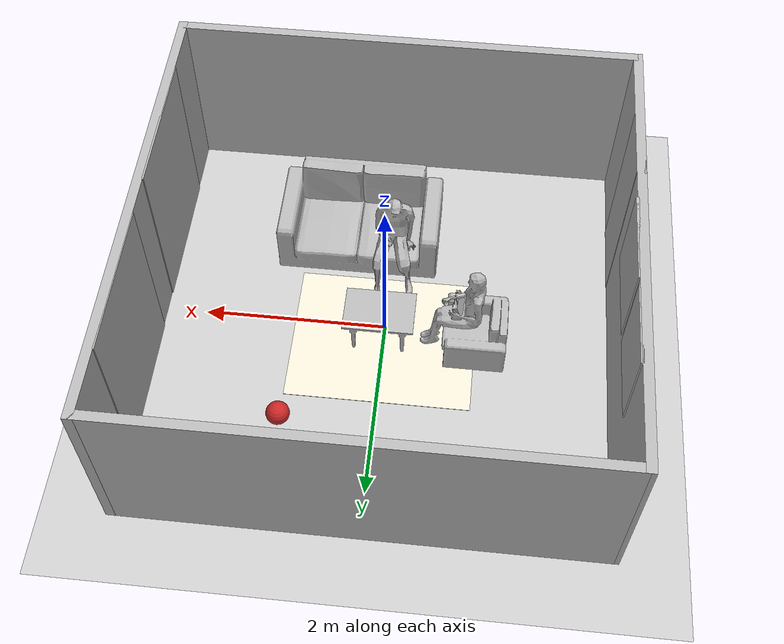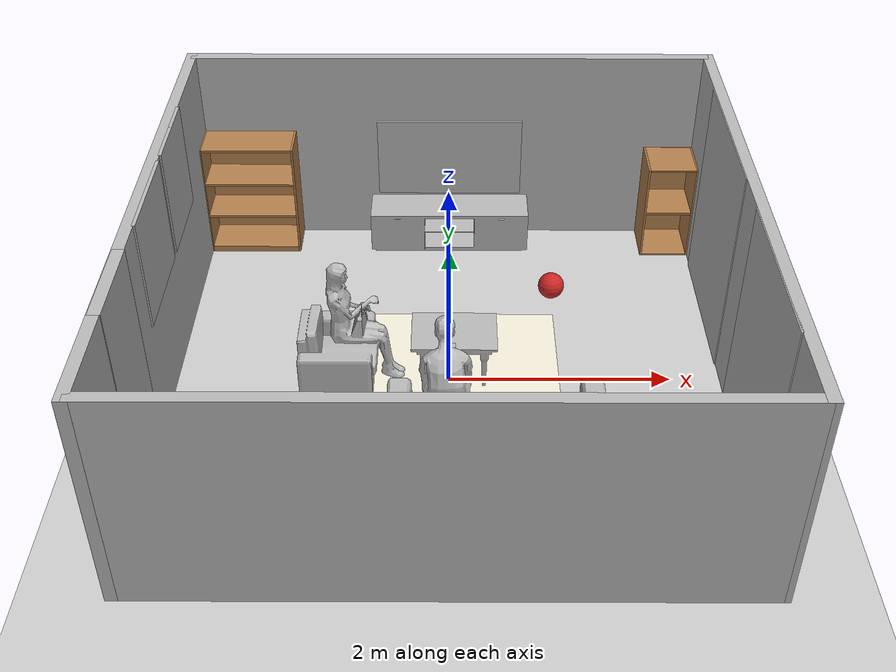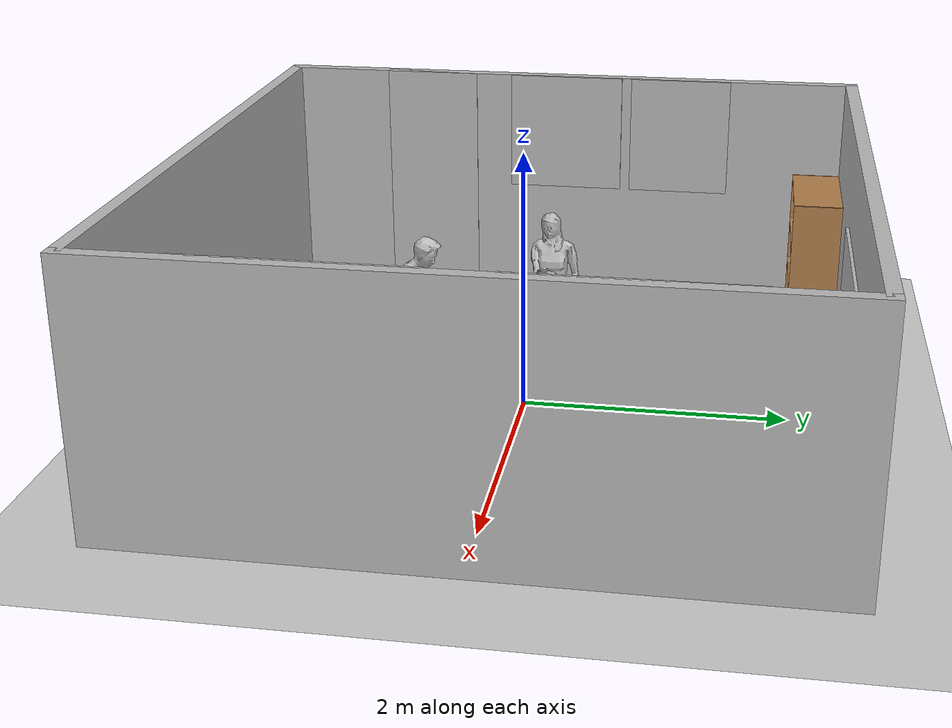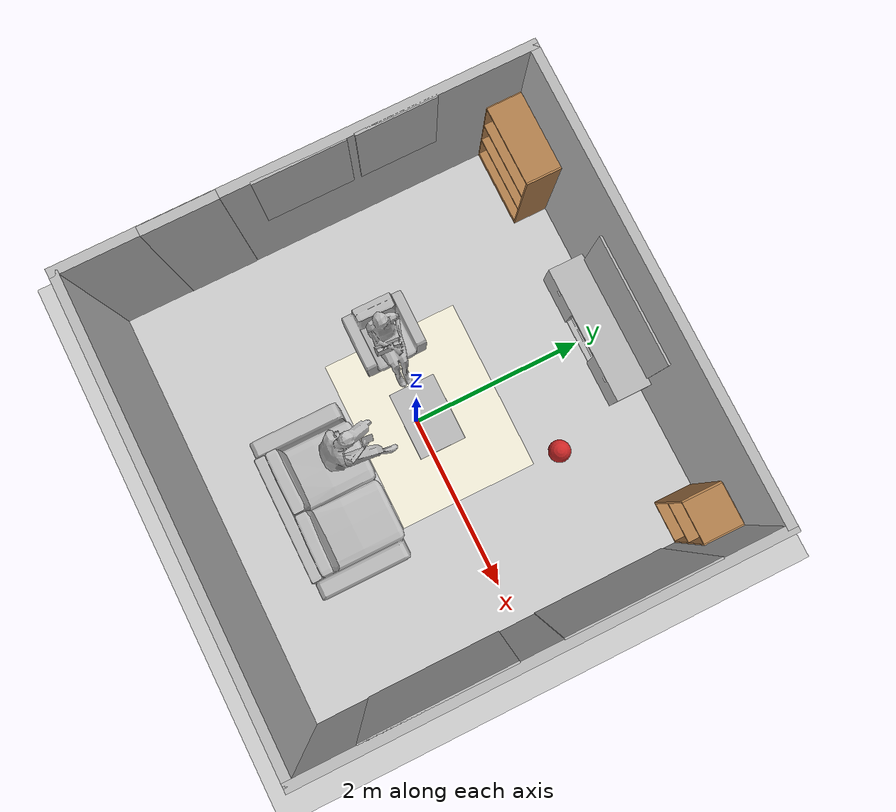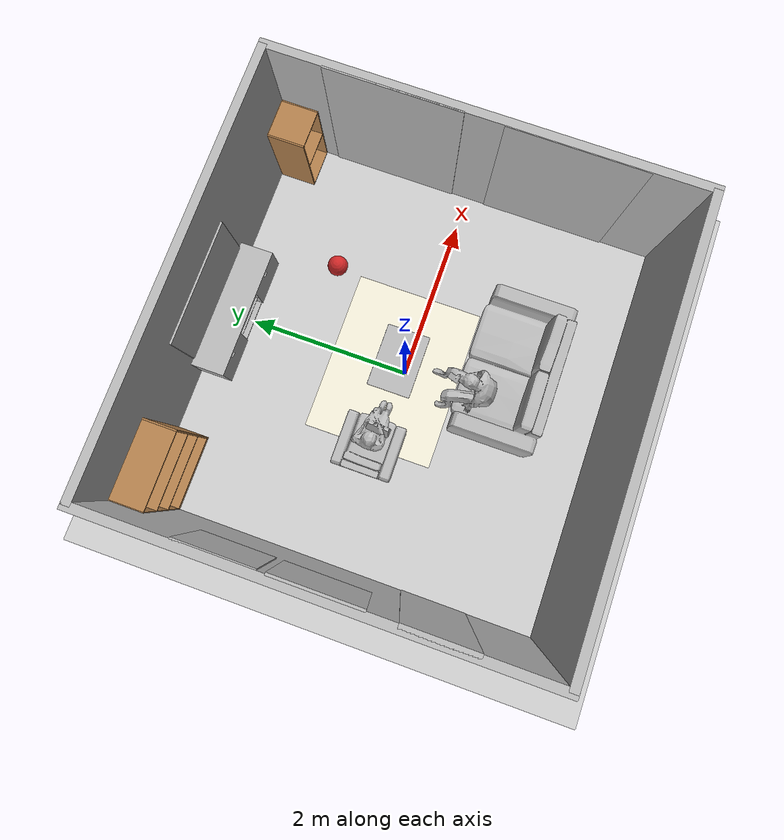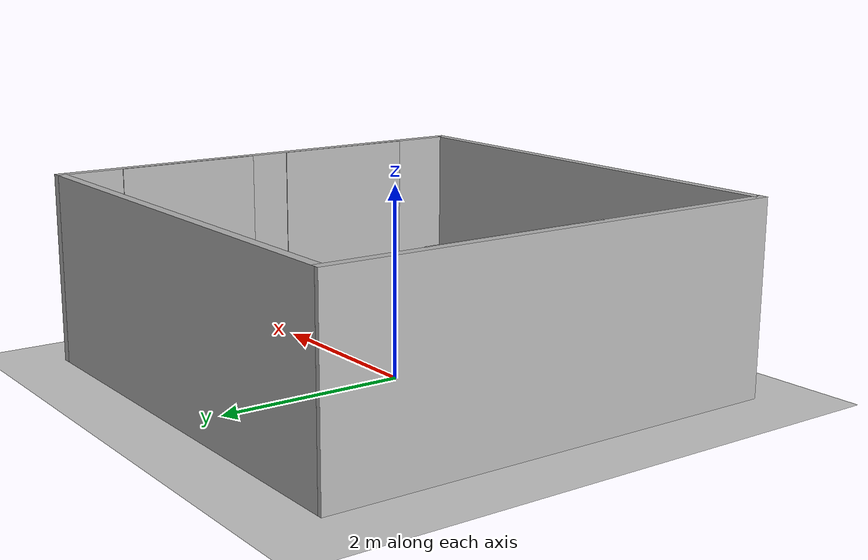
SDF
<sdf version="1.7">
 <world name="default">
  <light name="sun" type="directional">
   <cast_shadows>false</cast_shadows>
   <pose>0 0 10 0 -0 0</pose>
   <diffuse>0.8 0.8 0.8 1</diffuse>
   <specular>0.2 0.2 0.2 1</specular>
   <attenuation>
    <range>1000</range>
    <constant>0.9</constant>
    <linear>0.01</linear>
    <quadratic>0.001</quadratic>
   </attenuation>
   <direction>-0.5 0.1 -0.9</direction>
   <spot><inner_angle>0</inner_angle><outer_angle>0</outer_angle><falloff>0</falloff></spot>
  </light>
  <model name="ground_plane">
   <static>1</static>
   <link name="link">
    <collision name="collision">
     <geometry><plane><normal>0 0 1</normal><size>100 100</size></plane></geometry>
     <surface>
      <contact><collide_bitmask>65535</collide_bitmask></contact>
      <friction><ode><mu>100</mu><mu2>50</mu2></ode></friction>
     </surface>
    </collision>
    <visual name="visual">
     <cast_shadows>0</cast_shadows>
     <geometry><plane><normal>0 0 1</normal><size>1 1</size></plane></geometry>
     <material>
      <script><uri>file://media/materials/scripts/gazebo.material</uri><name>Gazebo/Grey</name></script>
     </material>
    </visual>
   </link>
  </model>
  <gravity>0 0 -9.8</gravity>
  <magnetic_field>6e-06 2.3e-05 -4.2e-05</magnetic_field>
  <atmosphere type="adiabatic"/>
  <physics type="ode">
   <max_step_size>0.001</max_step_size>
   <real_time_factor>1</real_time_factor>
   <real_time_update_rate>1000</real_time_update_rate>
  </physics>
  <scene><ambient>0.4 0.4 0.4 1</ambient><background>0.7 0.7 0.7 1</background><shadows>1</shadows></scene>
  <audio><device>default</device></audio>
  <spherical_coordinates>
   <surface_model>EARTH_WGS84</surface_model>
   <latitude_deg>0</latitude_deg>
   <longitude_deg>0</longitude_deg>
   <elevation>0</elevation>
   <heading_deg>0</heading_deg>
  </spherical_coordinates>
  <model name="FemaleVisitorSit">
   <static>1</static>
   <link name="body">
    <visual name="visual">
     <geometry><mesh><uri>model://FemaleVisitorSit/meshes/FemaleVisitorSit.obj</uri></mesh></geometry>
    </visual>
    <collision name="collision">
     <geometry><mesh><uri>model://FemaleVisitorSit/meshes/FemaleVisitorSit_Col.obj</uri></mesh></geometry>
    </collision>
   </link>
   <pose>-0.91 0.09 0 0 -0 1.5707</pose>
  </model>
  <model name="MaleVisitorSit">
   <static>1</static>
   <link name="body">
    <visual name="visual">
     <geometry><mesh><uri>model://MaleVisitorSit/meshes/MaleVisitorSit.obj</uri></mesh></geometry>
    </visual>
    <collision name="collision">
     <geometry><mesh><uri>model://MaleVisitorSit/meshes/MaleVisitorSit_Col.obj</uri></mesh></geometry>
    </collision>
   </link>
   <pose>0 -0.91 0 0 -0 3.1415</pose>
  </model>
  <model name="tv_65in_emissive">
   <link name="link">
    <visual name="visual">
     <geometry><box><size>0.05 1.45 0.83</size></box></geometry>
     <material>
      <script>
       <uri>model://tv_65in_emissive/material/script</uri>
       <uri>model://tv_65in_emissive/material/textures</uri>
       <name>Custom/tv_emissive</name>
      </script>
     </material>
    </visual>
   </link>
   <static>1</static>
   <pose>0 2.4 0.9 0 -0 1.5707</pose>
  </model>
  <model name="TVStand">
   <static>1</static>
   <link name="body">
    <visual name="visual"><geometry><mesh><uri>model://TVStand/meshes/TVStand.obj</uri></mesh></geometry></visual>
    <collision name="collision">
     <geometry><mesh><uri>model://TVStand/meshes/TVStand_Col.obj</uri></mesh></geometry>
    </collision>
   </link>
   <pose>0 2.2 0 0 -0 0</pose>
  </model>
  <model name="Bookshelf">
   <static>1</static>
   <link name="link">
    <inertial><mass>1</mass></inertial>
    <collision name="back">
     <pose>0 0.005 0.6 0 -0 0</pose>
     <geometry><box><size>0.9 0.01 1.2</size></box></geometry>
    </collision>
    <visual name="visual1">
     <pose>0 0.005 0.6 0 -0 0</pose>
     <geometry><box><size>0.9 0.01 1.2</size></box></geometry>
     <material>
      <diffuse>1 1 1 1</diffuse>
      <script><uri>file://media/materials/scripts/gazebo.material</uri><name>Gazebo/Wood</name></script>
      <pbr><metal><albedo_map>model://Bookshelf/bookshelf_diffuse.jpg</albedo_map></metal></pbr>
     </material>
    </visual>
    <collision name="left_side">
     <pose>0.45 -0.195 0.6 0 -0 0</pose>
     <geometry><box><size>0.02 0.4 1.2</size></box></geometry>
    </collision>
    <visual name="visual2">
     <pose>0.45 -0.195 0.6 0 -0 0</pose>
     <geometry><box><size>0.02 0.4 1.2</size></box></geometry>
     <material>
      <diffuse>1 1 1 1</diffuse>
      <script><uri>file://media/materials/scripts/gazebo.material</uri><name>Gazebo/Wood</name></script>
      <pbr><metal><albedo_map>model://Bookshelf/bookshelf_diffuse.jpg</albedo_map></metal></pbr>
     </material>
    </visual>
    <collision name="right_side">
     <pose>-0.45 -0.195 0.6 0 -0 0</pose>
     <geometry><box><size>0.02 0.4 1.2</size></box></geometry>
    </collision>
    <visual name="visual3">
     <pose>-0.45 -0.195 0.6 0 -0 0</pose>
     <geometry><box><size>0.02 0.4 1.2</size></box></geometry>
     <material>
      <diffuse>1 1 1 1</diffuse>
      <script><uri>file://media/materials/scripts/gazebo.material</uri><name>Gazebo/Wood</name></script>
      <pbr><metal><albedo_map>model://Bookshelf/bookshelf_diffuse.jpg</albedo_map></metal></pbr>
     </material>
    </visual>
    <collision name="bottom">
     <pose>0 -0.195 0.03 0 -0 0</pose>
     <geometry><box><size>0.88 0.4 0.06</size></box></geometry>
    </collision>
    <visual name="visual4">
     <pose>0 -0.195 0.03 0 -0 0</pose>
     <geometry><box><size>0.88 0.4 0.06</size></box></geometry>
     <material>
      <diffuse>1 1 1 1</diffuse>
      <script><uri>file://media/materials/scripts/gazebo.material</uri><name>Gazebo/Wood</name></script>
      <pbr><metal><albedo_map>model://Bookshelf/bookshelf_diffuse.jpg</albedo_map></metal></pbr>
     </material>
    </visual>
    <collision name="top">
     <pose>0 -0.195 1.19 0 -0 0</pose>
     <geometry><box><size>0.88 0.4 0.02</size></box></geometry>
    </collision>
    <visual name="visual5">
     <pose>0 -0.195 1.19 0 -0 0</pose>
     <geometry><box><size>0.88 0.4 0.02</size></box></geometry>
     <material>
      <diffuse>1 1 1 1</diffuse>
      <script><uri>file://media/materials/scripts/gazebo.material</uri><name>Gazebo/Wood</name></script>
      <pbr><metal><albedo_map>model://Bookshelf/bookshelf_diffuse.jpg</albedo_map></metal></pbr>
     </material>
    </visual>
    <collision name="low_shelf">
     <pose>0 -0.195 0.43 0 -0 0</pose>
     <geometry><box><size>0.88 0.4 0.02</size></box></geometry>
    </collision>
    <visual name="visual6">
     <pose>0 -0.195 0.43 0 -0 0</pose>
     <geometry><box><size>0.88 0.4 0.02</size></box></geometry>
     <material>
      <diffuse>1 1 1 1</diffuse>
      <script><uri>file://media/materials/scripts/gazebo.material</uri><name>Gazebo/Wood</name></script>
      <pbr><metal><albedo_map>model://Bookshelf/bookshelf_diffuse.jpg</albedo_map></metal></pbr>
     </material>
    </visual>
    <collision name="high_shelf">
     <pose>0 -0.195 0.8 0 -0 0</pose>
     <geometry><box><size>0.88 0.4 0.02</size></box></geometry>
    </collision>
    <visual name="visual7">
     <pose>0 -0.195 0.8 0 -0 0</pose>
     <geometry><box><size>0.88 0.4 0.02</size></box></geometry>
     <material>
      <diffuse>1 1 1 1</diffuse>
      <script><uri>file://media/materials/scripts/gazebo.material</uri><name>Gazebo/Wood</name></script>
      <pbr><metal><albedo_map>model://Bookshelf/bookshelf_diffuse.jpg</albedo_map></metal></pbr>
     </material>
    </visual>
   </link>
   <pose>-2 2.4 0 0 -0 0</pose>
  </model>
  <model name="cabinet">
   <static>1</static>
   <link name="cabinet_bottom_plate">
    <inertial>
     <pose>0 0 -1 0 -0 0</pose>
     <inertia><ixx>2.05</ixx><ixy>0</ixy><ixz>0</ixz><iyy>2.05</iyy><iyz>0</iyz><izz>2.05</izz></inertia>
     <mass>25</mass>
    </inertial>
    <collision name="cabinet_bottom_plate_geom">
     <pose>0 0 0.01 0 -0 0</pose>
     <geometry><box><size>0.45 0.45 0.02</size></box></geometry>
    </collision>
    <visual name="cabinet_bottom_plate_geom_visual">
     <pose>0 0 0.01 0 -0 0</pose>
     <geometry><box><size>0.45 0.45 0.02</size></box></geometry>
     <material>
      <script><uri>file://media/materials/scripts/gazebo.material</uri><name>Gazebo/Wood</name></script>
     </material>
    </visual>
    <collision name="cabinet_bottom_plate_geom_cabinet_back_plate">
     <pose>0.235 0 0.51 0 -0 0</pose>
     <geometry><box><size>0.02 0.45 1.02</size></box></geometry>
    </collision>
    <visual name="cabinet_bottom_plate_geom_cabinet_back_plate_visual">
     <pose>0.235 0 0.51 0 -0 0</pose>
     <geometry><box><size>0.02 0.45 1.02</size></box></geometry>
     <material>
      <script><uri>file://media/materials/scripts/gazebo.material</uri><name>Gazebo/Wood</name></script>
     </material>
    </visual>
    <collision name="cabinet_bottom_plate_geom_cabinet_left_plate">
     <pose>0 0.235 0.51 0 -0 0</pose>
     <geometry><box><size>0.45 0.02 1.02</size></box></geometry>
    </collision>
    <visual name="cabinet_bottom_plate_geom_cabinet_left_plate_visual">
     <pose>0 0.235 0.51 0 -0 0</pose>
     <geometry><box><size>0.45 0.02 1.02</size></box></geometry>
     <material>
      <script><uri>file://media/materials/scripts/gazebo.material</uri><name>Gazebo/Wood</name></script>
     </material>
    </visual>
    <collision name="cabinet_bottom_plate_geom_cabinet_middle_plate">
     <pose>0 0 0.51 0 -0 0</pose>
     <geometry><box><size>0.45 0.45 0.02</size></box></geometry>
    </collision>
    <visual name="cabinet_bottom_plate_geom_cabinet_middle_plate_visual">
     <pose>0 0 0.51 0 -0 0</pose>
     <geometry><box><size>0.45 0.45 0.02</size></box></geometry>
     <material>
      <script><uri>file://media/materials/scripts/gazebo.material</uri><name>Gazebo/Wood</name></script>
     </material>
    </visual>
    <collision name="cabinet_bottom_plate_geom_cabinet_right_plate">
     <pose>0 -0.235 0.51 0 -0 0</pose>
     <geometry><box><size>0.45 0.02 1.02</size></box></geometry>
    </collision>
    <visual name="cabinet_bottom_plate_geom_cabinet_right_plate_visual">
     <pose>0 -0.235 0.51 0 -0 0</pose>
     <geometry><box><size>0.45 0.02 1.02</size></box></geometry>
     <material>
      <script><uri>file://media/materials/scripts/gazebo.material</uri><name>Gazebo/Wood</name></script>
     </material>
    </visual>
    <collision name="cabinet_bottom_plate_geom_cabinet_top_plate">
     <pose>0 0 1.01 0 -0 0</pose>
     <geometry><box><size>0.45 0.45 0.02</size></box></geometry>
    </collision>
    <visual name="cabinet_bottom_plate_geom_cabinet_top_plate_visual">
     <pose>0 0 1.01 0 -0 0</pose>
     <geometry><box><size>0.45 0.45 0.02</size></box></geometry>
     <material>
      <script><uri>file://media/materials/scripts/gazebo.material</uri><name>Gazebo/Wood</name></script>
     </material>
    </visual>
   </link>
   <pose>2.21 2.17 0 0 -0 1.5707</pose>
  </model>
  <model name="MiniSofa">
   <link name="body">
    <pose>0 0 0 0 0 -1.5708</pose>
    <visual name="visual">
     <geometry><mesh><uri>model://MiniSofa/meshes/minisofa.obj</uri><scale>1 1 1</scale></mesh></geometry>
    </visual>
    <collision name="collision">
     <geometry><mesh><uri>model://MiniSofa/meshes/minisofa.obj</uri><scale>1 1 1</scale></mesh></geometry>
    </collision>
   </link>
   <static>1</static>
   <pose>-1 0.1 0 0 -0 3.1415</pose>
  </model>
  <model name="Sofa">
   <link name="link">
    <pose>0 0 0 0 -0 1.5708</pose>
    <visual name="visual"><geometry><mesh><uri>model://Sofa/meshes/Sofa.obj</uri></mesh></geometry></visual>
    <collision name="collision">
     <geometry><mesh><uri>model://Sofa/meshes/Sofa.obj</uri></mesh></geometry>
    </collision>
   </link>
   <static>1</static>
   <pose>0.394 -1.2 0 0 -0 1.5707</pose>
  </model>
  <model name="door_08x2m">
   <link name="link">
    <visual name="visual">
     <geometry><box><size>0.1 0.8 2</size></box></geometry>
     <material>
      <script>
       <uri>model://door_08x2m/material/script</uri>
       <uri>model://door_08x2m/material/textures</uri>
       <name>Custom/door_08x2m</name>
      </script>
     </material>
    </visual>
   </link>
   <static>1</static>
   <pose>-2.495 -1.2 1 0 -0 0</pose>
  </model>
  <model name="rug_ivory_2m">
   <link name="link">
    <visual name="visual">
     <geometry><box><size>1.6 2 0.005</size></box></geometry>
     <material>
      <script>
       <uri>model://rug_ivory_2m/material/script</uri>
       <uri>model://rug_ivory_2m/material/textures</uri>
       <name>Custom/rug_ivory_2m</name>
      </script>
     </material>
    </visual>
   </link>
   <static>1</static>
   <pose>0 0.15 0 0 -0 1.5707</pose>
  </model>
  <model name="kaiaai_poster">
   <link name="link">
    <visual name="visual">
     <geometry><box><size>0.03 0.9782 1</size></box></geometry>
     <material>
      <script>
       <uri>model://kaiaai_poster/material/script</uri>
       <uri>model://kaiaai_poster/material/textures</uri>
       <name>Custom/kaiaai</name>
      </script>
     </material>
    </visual>
   </link>
   <static>1</static>
   <pose>-2.45 0 1.5 0 -0 0</pose>
  </model>
  <model name="makerspet_poster">
   <link name="link">
    <visual name="visual">
     <geometry><box><size>0.03 0.85714 1</size></box></geometry>
     <material>
      <script>
       <uri>model://makerspet_poster/material/script</uri>
       <uri>model://makerspet_poster/material/textures</uri>
       <name>Custom/makerspet</name>
      </script>
     </material>
    </visual>
   </link>
   <static>1</static>
   <pose>-2.45 1 1.5 0 -0 0</pose>
  </model>
  <model name="window_curtains">
   <link name="link">
    <visual name="visual">
     <geometry><box><size>0.02 1.5676 2</size></box></geometry>
     <material>
      <script>
       <uri>model://window_curtains/material/script</uri>
       <uri>model://window_curtains/material/textures</uri>
       <name>Custom/window_curtains</name>
      </script>
      <emissive>0 1 0 1</emissive>
     </material>
    </visual>
   </link>
   <static>1</static>
   <pose>2.45 1 1 0 -0 0</pose>
  </model>
  <model name="window_curtains_0">
   <link name="link">
    <visual name="visual">
     <geometry><box><size>0.02 1.5676 2</size></box></geometry>
     <material>
      <script>
       <uri>model://window_curtains/material/script</uri>
       <uri>model://window_curtains/material/textures</uri>
       <name>Custom/window_curtains</name>
      </script>
      <emissive>0 1 0 1</emissive>
     </material>
    </visual>
   </link>
   <static>1</static>
   <pose>2.45 -1 1 0 -0 0</pose>
  </model>
  <model name="red_ball_10in">
   <pose>1 1.25 0.127 0 -0 0</pose>
   <link name="link">
    <inertial>
     <mass>0.213</mass>
     <inertia>
      <ixx>0.00322667</ixx>
      <ixy>0</ixy>
      <ixz>0</ixz>
      <iyy>0.00322667</iyy>
      <iyz>0</iyz>
      <izz>0.00322667</izz>
     </inertia>
    </inertial>
    <visual name="visual">
     <geometry><sphere><radius>0.127</radius></sphere></geometry>
     <material>
      <script><uri>file://media/materials/scripts/gazebo.material</uri><name>Gazebo/Red</name></script>
     </material>
    </visual>
    <collision name="collision">
     <geometry><sphere><radius>0.127</radius></sphere></geometry>
     <surface>
      <bounce><restitution_coefficient>0.15937</restitution_coefficient><threshold>0</threshold></bounce>
      <contact><ode><max_vel>100</max_vel><min_depth>0.001</min_depth></ode></contact>
     </surface>
    </collision>
   </link>
  </model>
  <model name="room_wall_2x5m">
   <link name="link">
    <visual name="visual">
     <geometry><box><size>0.1 5 2</size></box></geometry>
     <material>
      <script>
       <uri>model://room_wall_2x5m/material/script</uri>
       <uri>model://room_wall_2x5m/material/textures</uri>
       <name>Custom/room_wall_2x5m</name>
      </script>
     </material>
    </visual>
    <collision name="collision"><geometry><box><size>0.1 5 2</size></box></geometry></collision>
   </link>
   <static>1</static>
   <pose>-2.5 0 1 0 -0 0</pose>
  </model>
  <model name="room_wall_2x5m_0">
   <link name="link">
    <visual name="visual">
     <geometry><box><size>0.1 5 2</size></box></geometry>
     <material>
      <script>
       <uri>model://room_wall_2x5m/material/script</uri>
       <uri>model://room_wall_2x5m/material/textures</uri>
       <name>Custom/room_wall_2x5m</name>
      </script>
     </material>
    </visual>
    <collision name="collision"><geometry><box><size>0.1 5 2</size></box></geometry></collision>
   </link>
   <static>1</static>
   <pose>2.5 0 1 0 -0 0</pose>
  </model>
  <model name="room_wall_2x5m_1">
   <link name="link">
    <visual name="visual">
     <geometry><box><size>0.1 5 2</size></box></geometry>
     <material>
      <script>
       <uri>model://room_wall_2x5m/material/script</uri>
       <uri>model://room_wall_2x5m/material/textures</uri>
       <name>Custom/room_wall_2x5m</name>
      </script>
     </material>
    </visual>
    <collision name="collision"><geometry><box><size>0.1 5 2</size></box></geometry></collision>
   </link>
   <static>1</static>
   <pose>0 2.45 1 0 -0 1.5707</pose>
  </model>
  <model name="room_wall_2x5m_2">
   <link name="link">
    <visual name="visual">
     <geometry><box><size>0.1 5 2</size></box></geometry>
     <material>
      <script>
       <uri>model://room_wall_2x5m/material/script</uri>
       <uri>model://room_wall_2x5m/material/textures</uri>
       <name>Custom/room_wall_2x5m</name>
      </script>
     </material>
    </visual>
    <collision name="collision"><geometry><box><size>0.1 5 2</size></box></geometry></collision>
   </link>
   <static>1</static>
   <pose>0 -2.45 1 0 -0 1.5707</pose>
  </model>
  <model name="TableMarble">
   <static>1</static>
   <pose>0 0.1 0.324 0 -0 1.5708</pose>
   <link name="link">
    <collision name="collision">
     <geometry>
      <mesh><uri>model://TableMarble/meshes/table_lightmap.dae</uri><scale>0.05 0.1 0.125</scale></mesh>
     </geometry>
    </collision>
    <visual name="visual">
     <geometry>
      <mesh><uri>model://TableMarble/meshes/table_lightmap.dae</uri><scale>0.05 0.1 0.125</scale></mesh>
     </geometry>
     <material>
      <script>
       <uri>model://TableMarble/materials/scripts</uri>
       <uri>model://TableMarble/materials/textures</uri>
       <name>Table/Marble_Lightmap</name>
      </script>
      <lighting>0</lighting>
     </material>
    </visual>
   </link>
  </model>
 </world>
</sdf>
